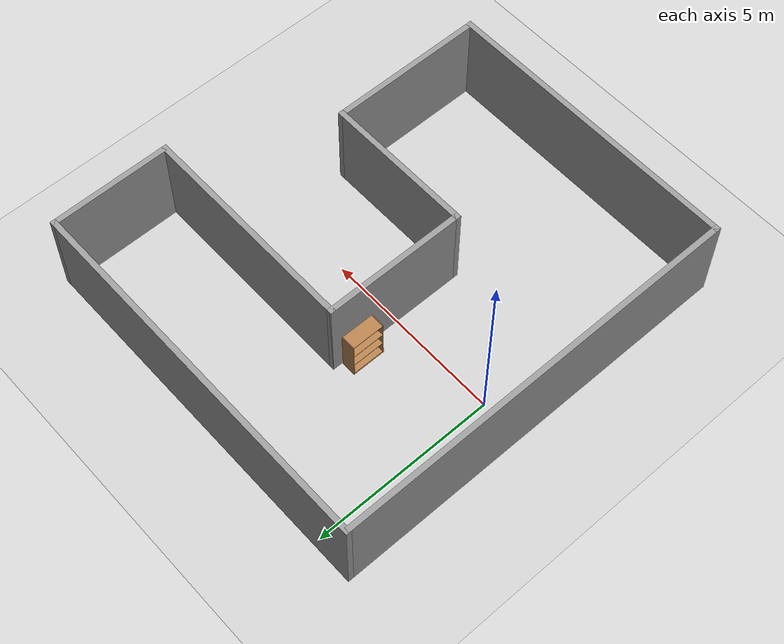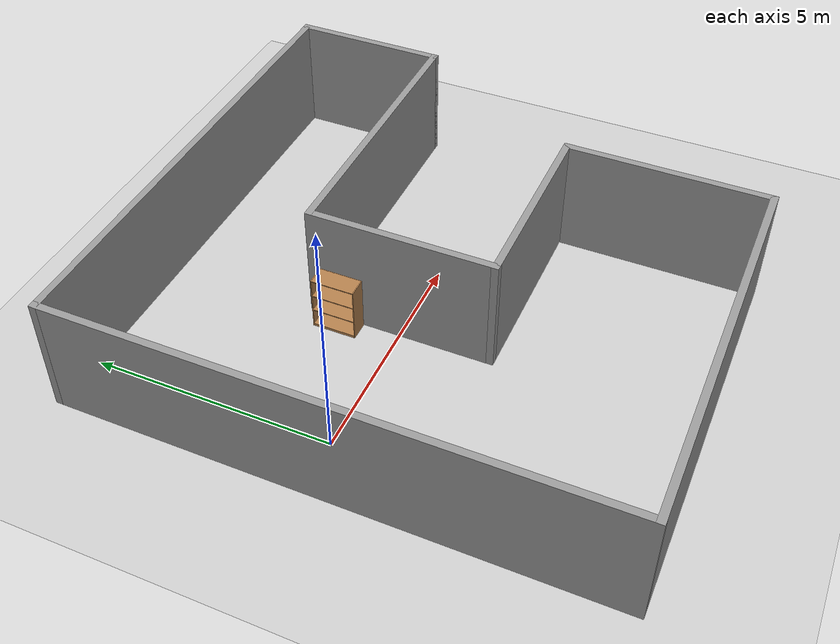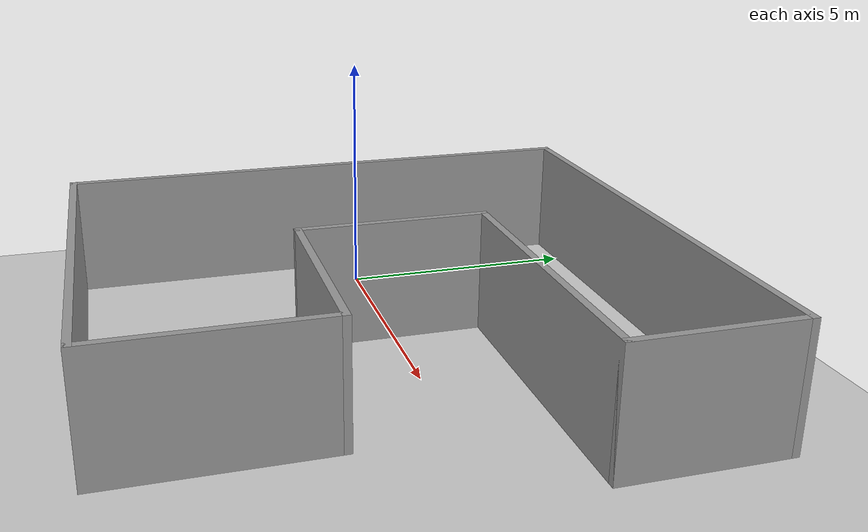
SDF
<sdf version="1.7">
 <world name="default">
  <light name="sun" type="directional">
   <pose>0 0 10 0 -0 0</pose>
   <diffuse>0.8 0.8 0.8 1</diffuse>
   <specular>0.2 0.2 0.2 1</specular>
   <attenuation>
    <range>1000</range>
    <constant>0.9</constant>
    <linear>0.01</linear>
    <quadratic>0.001</quadratic>
   </attenuation>
   <direction>-0.5 0.1 -0.9</direction>
   <spot><inner_angle>0</inner_angle><outer_angle>0</outer_angle><falloff>0</falloff></spot>
  </light>
  <model name="ground_plane">
   <static>1</static>
   <link name="link">
    <collision name="collision">
     <geometry><plane><normal>0 0 1</normal><size>100 100</size></plane></geometry>
     <surface>
      <contact><collide_bitmask>65535</collide_bitmask></contact>
      <friction><ode><mu>100</mu><mu2>50</mu2></ode></friction>
     </surface>
    </collision>
    <visual name="visual">
     <cast_shadows>0</cast_shadows>
     <geometry><plane><normal>0 0 1</normal><size>100 100</size></plane></geometry>
     <material>
      <script><uri>file://media/materials/scripts/gazebo.material</uri><name>Gazebo/Grey</name></script>
     </material>
    </visual>
   </link>
  </model>
  <gravity>0 0 -9.8</gravity>
  <magnetic_field>6e-06 2.3e-05 -4.2e-05</magnetic_field>
  <atmosphere type="adiabatic"/>
  <physics type="ode">
   <max_step_size>0.001</max_step_size>
   <real_time_factor>1</real_time_factor>
   <real_time_update_rate>1000</real_time_update_rate>
  </physics>
  <scene><ambient>0.4 0.4 0.4 1</ambient><background>0.7 0.7 0.7 1</background><shadows>1</shadows></scene>
  <spherical_coordinates>
   <surface_model>EARTH_WGS84</surface_model>
   <latitude_deg>0</latitude_deg>
   <longitude_deg>0</longitude_deg>
   <elevation>0</elevation>
   <heading_deg>0</heading_deg>
  </spherical_coordinates>
  <model name="complex_warehouse">
   <pose>4 -0.5 0 0 -0 0</pose>
   <link name="Wall_10">
    <collision name="Wall_10_Collision">
     <geometry><box><size>3.95 0.15 2.5</size></box></geometry>
     <pose>0 0 1.25 0 -0 0</pose>
    </collision>
    <visual name="Wall_10_Visual">
     <pose>0 0 1.25 0 -0 0</pose>
     <geometry><box><size>3.95 0.15 2.5</size></box></geometry>
     <material>
      <script><uri>file://media/materials/scripts/gazebo.material</uri><name>Gazebo/Grey</name></script>
      <ambient>1 1 1 1</ambient>
     </material>
     <meta><layer>0</layer></meta>
    </visual>
    <pose>-0.9 0.5 0 0 -0 1.5708</pose>
   </link>
   <link name="Wall_14">
    <collision name="Wall_14_Collision">
     <geometry><box><size>6.15 0.15 2.5</size></box></geometry>
     <pose>0 0 1.25 0 -0 0</pose>
    </collision>
    <visual name="Wall_14_Visual">
     <pose>0 0 1.25 0 -0 0</pose>
     <geometry><box><size>6.15 0.15 2.5</size></box></geometry>
     <material>
      <script><uri>file://media/materials/scripts/gazebo.material</uri><name>Gazebo/Grey</name></script>
      <ambient>1 1 1 1</ambient>
     </material>
     <meta><layer>0</layer></meta>
    </visual>
    <pose>2.1 2.4 0 0 -0 0</pose>
   </link>
   <link name="Wall_16">
    <collision name="Wall_16_Collision">
     <geometry><box><size>3.35 0.15 2.5</size></box></geometry>
     <pose>0 0 1.25 0 -0 0</pose>
    </collision>
    <visual name="Wall_16_Visual">
     <pose>0 0 1.25 0 -0 0</pose>
     <geometry><box><size>3.35 0.15 2.5</size></box></geometry>
     <material>
      <script><uri>file://media/materials/scripts/gazebo.material</uri><name>Gazebo/Grey</name></script>
      <ambient>1 1 1 1</ambient>
     </material>
     <meta><layer>0</layer></meta>
    </visual>
    <pose>5.1 4 0 0 -0 1.5708</pose>
   </link>
   <link name="Wall_17">
    <collision name="Wall_17_Collision">
     <geometry><box><size>10.35 0.15 2.5</size></box></geometry>
     <pose>0 0 1.25 0 -0 0</pose>
    </collision>
    <visual name="Wall_17_Visual">
     <pose>0 0 1.25 0 -0 0</pose>
     <geometry><box><size>10.35 0.15 2.5</size></box></geometry>
     <material>
      <script><uri>file://media/materials/scripts/gazebo.material</uri><name>Gazebo/Grey</name></script>
      <ambient>1 1 1 1</ambient>
     </material>
     <meta><layer>0</layer></meta>
    </visual>
    <pose>0 5.6 0 0 -0 3.14159</pose>
   </link>
   <link name="Wall_22">
    <collision name="Wall_22_Collision">
     <geometry><box><size>11.35 0.15 2.5</size></box></geometry>
     <pose>0 0 1.25 0 -0 0</pose>
    </collision>
    <visual name="Wall_22_Visual">
     <pose>0 0 1.25 0 -0 0</pose>
     <geometry><box><size>11.35 0.15 2.5</size></box></geometry>
     <material>
      <script><uri>file://media/materials/scripts/gazebo.material</uri><name>Gazebo/Grey</name></script>
      <ambient>1 1 1 1</ambient>
     </material>
     <meta><layer>0</layer></meta>
    </visual>
    <pose>-5.1 0 0 0 -0 -1.5708</pose>
   </link>
   <link name="Wall_3">
    <collision name="Wall_3_Collision">
     <geometry><box><size>8.35 0.15 2.5</size></box></geometry>
     <pose>0 0 1.25 0 -0 0</pose>
    </collision>
    <visual name="Wall_3_Visual">
     <pose>0 0 1.25 0 -0 0</pose>
     <geometry><box><size>8.35 0.15 2.5</size></box></geometry>
     <material>
      <script><uri>file://media/materials/scripts/gazebo.material</uri><name>Gazebo/Grey</name></script>
      <ambient>1 1 1 1</ambient>
     </material>
     <meta><layer>0</layer></meta>
    </visual>
    <pose>-1 -5.6 0 0 -0 0</pose>
   </link>
   <link name="Wall_7">
    <collision name="Wall_7_Collision">
     <geometry><box><size>4.35 0.15 2.5</size></box></geometry>
     <pose>0 0 1.25 0 -0 0</pose>
    </collision>
    <visual name="Wall_7_Visual">
     <pose>0 0 1.25 0 -0 0</pose>
     <geometry><box><size>4.35 0.15 2.5</size></box></geometry>
     <material>
      <script><uri>file://media/materials/scripts/gazebo.material</uri><name>Gazebo/Grey</name></script>
      <ambient>1 1 1 1</ambient>
     </material>
     <meta><layer>0</layer></meta>
    </visual>
    <pose>3.1 -3.5 0 0 -0 1.5708</pose>
   </link>
   <link name="Wall_9">
    <collision name="Wall_9_Collision">
     <geometry><box><size>4.15 0.15 2.5</size></box></geometry>
     <pose>0 0 1.25 0 -0 0</pose>
    </collision>
    <visual name="Wall_9_Visual">
     <pose>0 0 1.25 0 -0 0</pose>
     <geometry><box><size>4.15 0.15 2.5</size></box></geometry>
     <material>
      <script><uri>file://media/materials/scripts/gazebo.material</uri><name>Gazebo/Grey</name></script>
      <ambient>1 1 1 1</ambient>
     </material>
     <meta><layer>0</layer></meta>
    </visual>
    <pose>1.1 -1.4 0 0 -0 3.14159</pose>
   </link>
   <static>1</static>
  </model>
  <model name="bookshelf">
   <static>1</static>
   <link name="link">
    <inertial><mass>1</mass></inertial>
    <collision name="back">
     <pose>0 0.005 0.6 0 -0 0</pose>
     <geometry><box><size>0.9 0.01 1.2</size></box></geometry>
    </collision>
    <visual name="visual1">
     <pose>0 0.005 0.6 0 -0 0</pose>
     <geometry><box><size>0.9 0.01 1.2</size></box></geometry>
     <material>
      <script><uri>file://media/materials/scripts/gazebo.material</uri><name>Gazebo/Wood</name></script>
     </material>
    </visual>
    <collision name="left_side">
     <pose>0.45 -0.195 0.6 0 -0 0</pose>
     <geometry><box><size>0.02 0.4 1.2</size></box></geometry>
    </collision>
    <visual name="visual2">
     <pose>0.45 -0.195 0.6 0 -0 0</pose>
     <geometry><box><size>0.02 0.4 1.2</size></box></geometry>
     <material>
      <script><uri>file://media/materials/scripts/gazebo.material</uri><name>Gazebo/Wood</name></script>
     </material>
    </visual>
    <collision name="right_side">
     <pose>-0.45 -0.195 0.6 0 -0 0</pose>
     <geometry><box><size>0.02 0.4 1.2</size></box></geometry>
    </collision>
    <visual name="visual3">
     <pose>-0.45 -0.195 0.6 0 -0 0</pose>
     <geometry><box><size>0.02 0.4 1.2</size></box></geometry>
     <material>
      <script><uri>file://media/materials/scripts/gazebo.material</uri><name>Gazebo/Wood</name></script>
     </material>
    </visual>
    <collision name="bottom">
     <pose>0 -0.195 0.03 0 -0 0</pose>
     <geometry><box><size>0.88 0.4 0.06</size></box></geometry>
    </collision>
    <visual name="visual4">
     <pose>0 -0.195 0.03 0 -0 0</pose>
     <geometry><box><size>0.88 0.4 0.06</size></box></geometry>
     <material>
      <script><uri>file://media/materials/scripts/gazebo.material</uri><name>Gazebo/Wood</name></script>
     </material>
    </visual>
    <collision name="top">
     <pose>0 -0.195 1.19 0 -0 0</pose>
     <geometry><box><size>0.88 0.4 0.02</size></box></geometry>
    </collision>
    <visual name="visual5">
     <pose>0 -0.195 1.19 0 -0 0</pose>
     <geometry><box><size>0.88 0.4 0.02</size></box></geometry>
     <material>
      <script><uri>file://media/materials/scripts/gazebo.material</uri><name>Gazebo/Wood</name></script>
     </material>
    </visual>
    <collision name="low_shelf">
     <pose>0 -0.195 0.43 0 -0 0</pose>
     <geometry><box><size>0.88 0.4 0.02</size></box></geometry>
    </collision>
    <visual name="visual6">
     <pose>0 -0.195 0.43 0 -0 0</pose>
     <geometry><box><size>0.88 0.4 0.02</size></box></geometry>
     <material>
      <script><uri>file://media/materials/scripts/gazebo.material</uri><name>Gazebo/Wood</name></script>
     </material>
    </visual>
    <collision name="high_shelf">
     <pose>0 -0.195 0.8 0 -0 0</pose>
     <geometry><box><size>0.88 0.4 0.02</size></box></geometry>
    </collision>
    <visual name="visual7">
     <pose>0 -0.195 0.8 0 -0 0</pose>
     <geometry><box><size>0.88 0.4 0.02</size></box></geometry>
     <material>
      <script><uri>file://media/materials/scripts/gazebo.material</uri><name>Gazebo/Wood</name></script>
     </material>
    </visual>
   </link>
   <pose>3 1.25 0 0 0 -1.57</pose>
  </model>
 </world>
</sdf>
